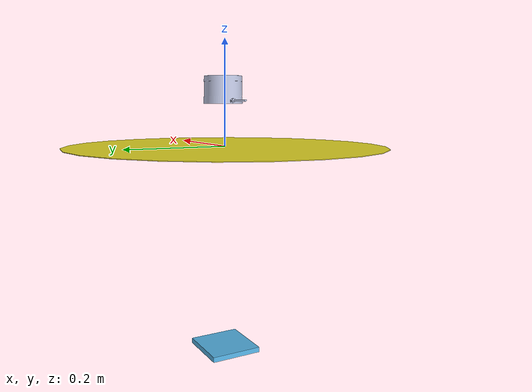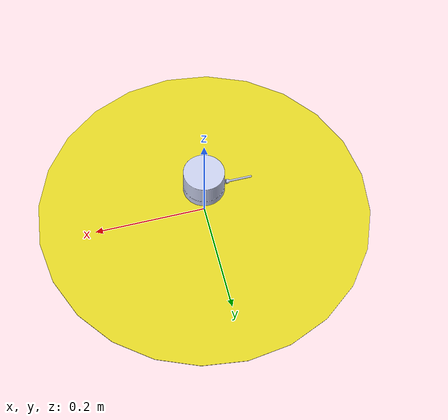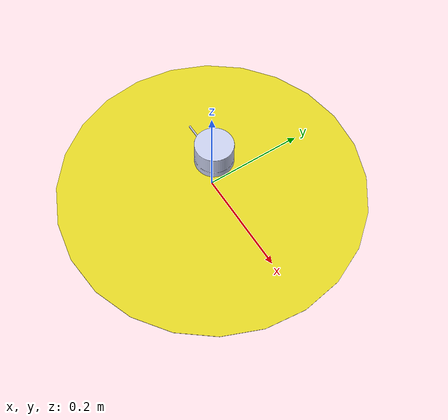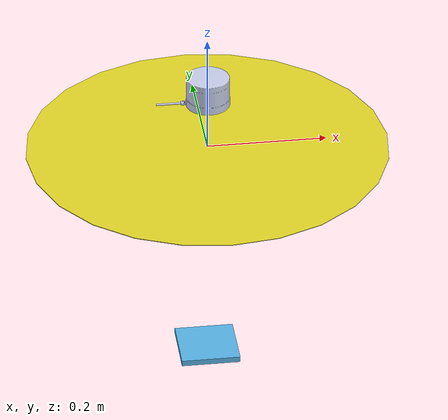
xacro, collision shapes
<?xml version="1.0"?>

<robot name="quadrotor" xmlns:xacro="http://www.ros.org/wiki/xacro">

    <!-- Included URDF Files -->
    <xacro:include filename="$(find drone_description)/urdf/drone.xacro" />

    <!-- Instantiate quadrotor_base_macro once (has no parameters atm) -->
    <xacro:drone />

    <gazebo>
      <plugin name="quadrotor_aerodynamics" filename="libhector_gazebo_quadrotor_aerodynamics.so">
        <alwaysOn>true</alwaysOn>
        <updateRate>0.0</updateRate>
        <bodyName>base_link</bodyName>
        <frameId>$(arg base_link_frame)</frameId>
      </plugin>
    </gazebo>

    <gazebo>
      <plugin name="quadrotor_propulsion" filename="libhector_gazebo_quadrotor_propulsion.so">
        <alwaysOn>true</alwaysOn>
        <updateRate>0.0</updateRate>
        <bodyName>base_link</bodyName>
        <frameId>$(arg base_link_frame)</frameId>
        <controlRate>100.0</controlRate>
        <controlTolerance>0.01</controlTolerance>
        <controlDelay>0.01</controlDelay>
        <motorStatusRate>0.0</motorStatusRate>
        <triggerTopic></triggerTopic>
        <topicName></topicName>
        <pwmTopicName></pwmTopicName>
        <supplyTopic></supplyTopic>
        <wrenchTopic></wrenchTopic>
        <statusTopic></statusTopic>
      </plugin>
    </gazebo>

        <gazebo>
          <plugin name="quadrotor_imu_sim" filename="libhector_gazebo_ros_imu.so">
            <updateRate>100.0</updateRate>
            <bodyName>base_link</bodyName>
            <frameId>$(arg base_link_frame)</frameId>
            <topicName>raw_imu</topicName>
            <rpyOffset>0 0 0</rpyOffset> <!-- deprecated -->
            <gaussianNoise>0</gaussianNoise>  <!-- deprecated -->
            <accelDrift>0.1 0.1 0.1</accelDrift>
            <accelGaussianNoise>0.35 0.35 0.3</accelGaussianNoise>
            <rateDrift>0.1 0.1 0.1</rateDrift>
            <rateGaussianNoise>0.05 0.05 0.015</rateGaussianNoise>
          </plugin>

          <plugin name="quadrotor_baro_sim" filename="libhector_gazebo_ros_baro.so">
            <updateRate>10.0</updateRate>
            <bodyName>base_link</bodyName>
            <frameId>$(arg base_link_frame)</frameId>
            <topicName>pressure_height</topicName>
            <altimeterTopicName>altimeter</altimeterTopicName>
            <offset>0</offset>
            <drift>10.0</drift>
            <gaussianNoise>0.1</gaussianNoise>
          </plugin>

          <plugin name="quadrotor_magnetic_sim" filename="libhector_gazebo_ros_magnetic.so">
            <updateRate>10.0</updateRate>
            <bodyName>base_link</bodyName>
            <frameId>$(arg base_link_frame)</frameId>
            <topicName>magnetic</topicName>
            <offset>0 0 0</offset>
            <drift>0.0 0.0 0.0</drift>
            <gaussianNoise>1.3e-2 1.3e-2 1.3e-2</gaussianNoise>
          </plugin>

          <plugin name="quadrotor_gps_sim" filename="libhector_gazebo_ros_gps.so">
            <updateRate>4.0</updateRate>
            <bodyName>base_link</bodyName>
            <frameId>$(arg base_link_frame)</frameId>
            <topicName>fix</topicName>
            <velocityTopicName>fix_velocity</velocityTopicName>
            <referenceLatitude>49.860246</referenceLatitude>
            <referenceLongitude>8.687077</referenceLongitude>
            <drift>5.0 5.0 5.0</drift>
            <gaussianNoise>0.01 0.01 0.01</gaussianNoise>
            <velocityDrift>0 0 0</velocityDrift>
            <velocityGaussianNoise>0.05 0.05 0.05</velocityGaussianNoise>
          </plugin>

          <plugin name="quadrotor_groundtruth_sim" filename="libgazebo_ros_p3d.so">
            <updateRate>100.0</updateRate>
            <bodyName>base_link</bodyName>
            <topicName>ground_truth/state</topicName>
            <gaussianNoise>0.0</gaussianNoise>
            <frameName>$(arg world_frame)</frameName>
          </plugin>

        </gazebo>

<gazebo reference="laser">
    <sensor type="ray" name="lds_lfcd_sensor">
      <pose>0 0 0 0 0 0</pose>
      <update_rate>5</update_rate>
      <ray>
        <scan>
          <horizontal>
            <samples>360</samples>
            <resolution>1</resolution>
            <min_angle>0.0</min_angle>
            <max_angle>6.28319</max_angle>
          </horizontal>
        </scan>
        <range>
          <min>0.120</min>
          <max>30.0</max>
          <resolution>0.015</resolution>
        </range>
        <noise>
          <type>gaussian</type>
          <mean>0.0</mean>
          <stddev>0.01</stddev>
        </noise>
      </ray>
      <plugin name="gazebo_ros_lds_lfcd_controller" filename="libgazebo_ros_laser.so">
        <topicName>scan</topicName>
        <frameName>laser</frameName>
      </plugin>
    </sensor>
  </gazebo>

 <gazebo reference="brush">
        <sensor name="collision_sensor" type="contact">
       <plugin name="gazebo_ros_bumper_controller" filename="libgazebo_ros_bumper.so">

            <bumpertopicname>contact</bumpertopicname>
            <framename>world</framename>
            <alwayson>true</alwayson>
            <updaterate>1000.0</updaterate>
        </plugin>
          <always_on>true</always_on>
          <update_rate>1000.</update_rate>
          <contact>
            <collision>brush_collision</collision>
          </contact>
        </sensor>
      </gazebo>

    <gazebo>
      <plugin name="quadrotor_controller" filename="libgazebo_ros_control.so">
        <controlPeriod>0.01</controlPeriod>
        <robotSimType>hector_quadrotor_controller_gazebo/QuadrotorHardwareSim</robotSimType>
      </plugin>
    </gazebo>

</robot>

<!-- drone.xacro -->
<robot xmlns:xacro="http://www.ros.org/wiki/xacro">

  <!-- Main quadrotor link -->
  <xacro:macro name="drone">
    <link name="base_link">
      <inertial>
        <mass value="1.477" />
        <origin xyz="0 0 0" />
        <inertia ixx="0.01152" ixy="0.0" ixz="0.0" iyy="0.01152" iyz="0.0" izz="0.0218" />
      </inertial>

      <visual>
        <origin xyz="0 0 0" rpy="0 0 0" />
        <geometry>
          <mesh filename="package://drone_description/meshes/drone.stl"/>
        </geometry>
      </visual>

      <collision>
        <origin xyz="0 0 0" rpy="0 0 0" />
        <geometry>
          <cylinder length="0.001" radius="0.301958"/>
        </geometry>
      </collision>
    </link>

<link name="brush">
      <inertial>
        <mass value="0.01" />
        <origin xyz="0 0 0" />
        <inertia ixx="0.01152" ixy="0.0" ixz="0.0" iyy="0.01152" iyz="0.0" izz="0.0218" />
      </inertial>

      <visual>
        <origin xyz="0 0 0" rpy="0 0 0" />
        <geometry>
          <mesh filename="package://drone_description/meshes/bush.stl"/>
        </geometry>
      </visual>

      <collision>
        <origin xyz="0 0 0" rpy="0 0 0" />
        <geometry>
          <box size="0.1 0.1 0.01"/>
        </geometry>
      </collision>
    </link>

    <joint
    name="sec_brush"
    type="continuous">
    <origin
      xyz="0 0 -0.4"
      rpy="0 0 1.57" />
    <parent
      link="base_link" />
    <child
      link="brush" />
    <axis
      xyz="0 0 1" />
  </joint>

<link
    name="laser">
    <inertial>
      <origin
        xyz="0 0 0"
        rpy="0 0 0" />
      <mass
        value="0.01" />
      <inertia
        ixx="0.01"
        ixy="0"
        ixz="0"
        iyy="0.01"
        iyz="0"
        izz="0.01" />
    </inertial>
    <visual>
      <origin
        xyz="0 0 0"
        rpy="0 0 0" />
      <geometry>
        <mesh
          filename="package://perimeter/meshes/rplidar.stl" />
      </geometry>
      <material
        name="">
        <color
          rgba="0.792156862745098 0.819607843137255 0.933333333333333 1" />
      </material>
    </visual>
    <collision>
      <origin
        xyz="0 0 0"
        rpy="0 0 0" />
      <geometry>
        <mesh
          filename="package://perimeter/meshes/rplidar.stl" />
      </geometry>
    </collision>
  </link>
  <joint
    name="laser_base"
    type="fixed">
    <origin
      xyz="0 0 0.08"
      rpy="0 0 0" />
    <parent
      link="base_link" />
    <child
      link="laser" />
    <axis
      xyz="0 0 0" />
  </joint>

  <gazebo reference="base_link">
 <material>Gazebo/Yellow</material>
</gazebo>

  </xacro:macro>
</robot>
